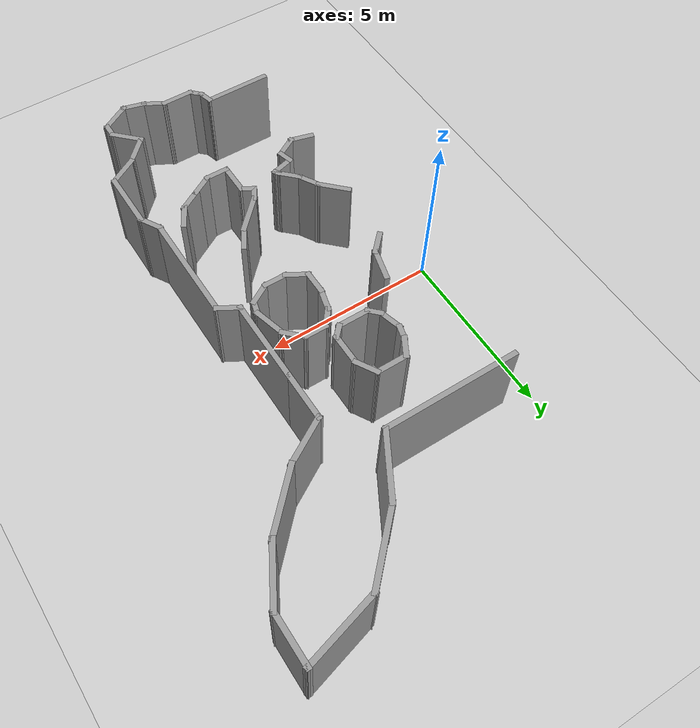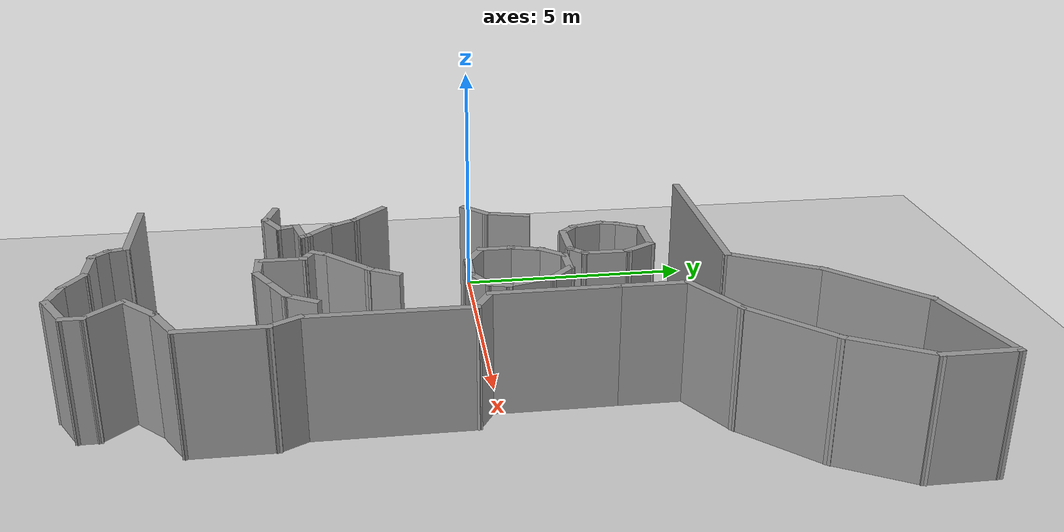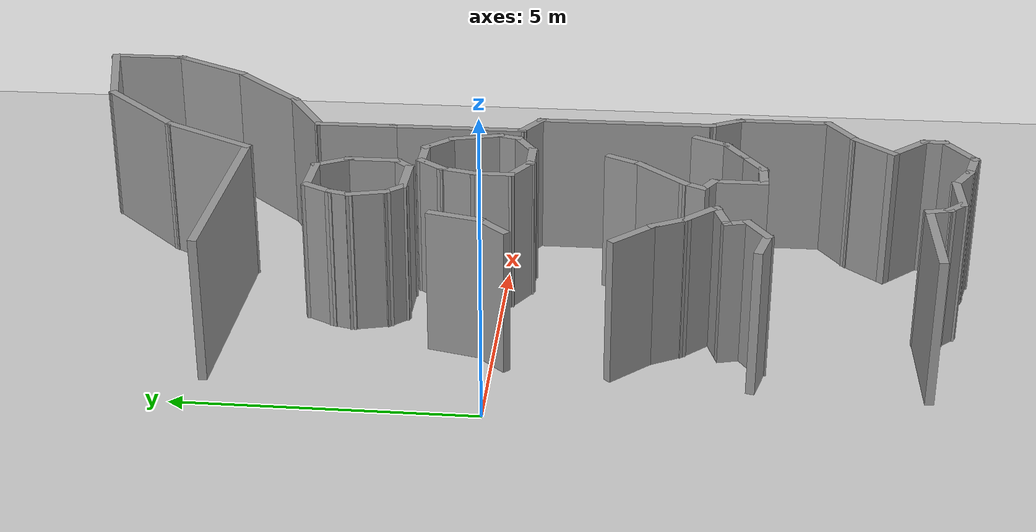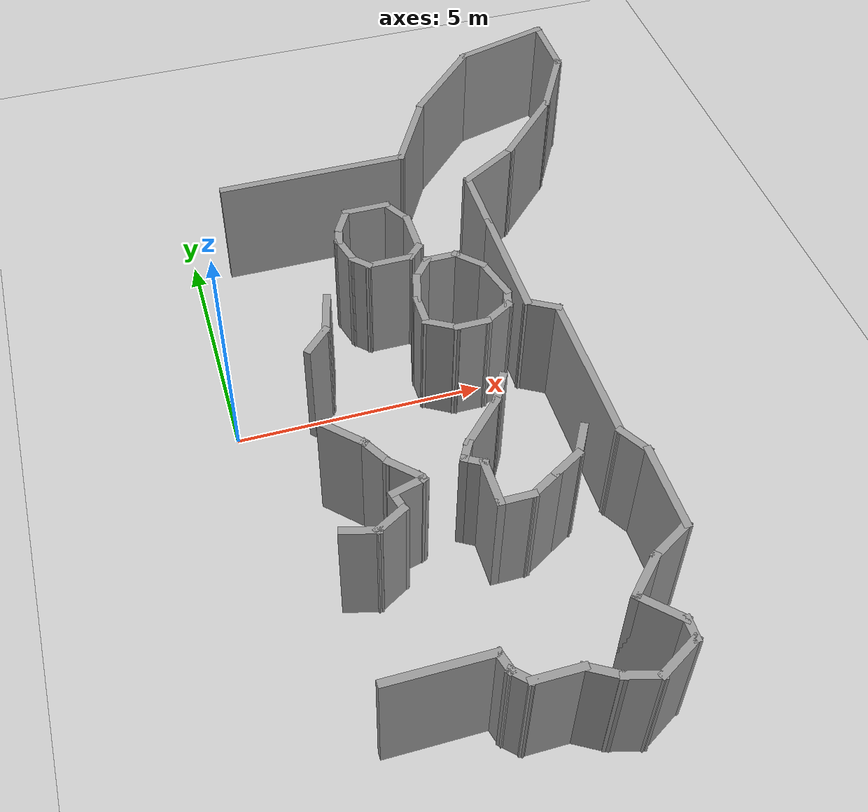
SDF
<sdf version="1.7">
 <world name="default">
  <model name="ground_plane">
   <static>1</static>
   <link name="link">
    <collision name="collision">
     <geometry><plane><normal>0 0 1</normal><size>100 100</size></plane></geometry>
     <surface>
      <contact><collide_bitmask>65535</collide_bitmask></contact>
      <friction><ode><mu>100</mu><mu2>50</mu2></ode></friction>
     </surface>
    </collision>
    <visual name="visual">
     <cast_shadows>0</cast_shadows>
     <geometry><plane><normal>0 0 1</normal><size>100 100</size></plane></geometry>
     <material>
      <script><uri>file://media/materials/scripts/gazebo.material</uri><name>Gazebo/Grey</name></script>
     </material>
    </visual>
   </link>
  </model>
  <model name="pikachu">
   <pose>-0.20309 0.029445 0 0 -0 0</pose>
   <link name="Wall_153">
    <collision name="Wall_153_Collision">
     <geometry><box><size>4 0.15 2.5</size></box></geometry>
     <pose>0 0 1.25 0 -0 0</pose>
    </collision>
    <visual name="Wall_153_Visual">
     <pose>0 0 1.25 0 -0 0</pose>
     <geometry><box><size>4 0.15 2.5</size></box></geometry>
     <material>
      <script><uri>file://media/materials/scripts/gazebo.material</uri><name>Gazebo/Grey</name></script>
      <ambient>1 1 1 1</ambient>
     </material>
     <meta><layer>0</layer></meta>
    </visual>
    <pose>2.94769 4.60083 0 0 -0 0</pose>
   </link>
   <link name="Wall_154">
    <collision name="Wall_154_Collision">
     <geometry><box><size>2 0.15 2.5</size></box></geometry>
     <pose>0 0 1.25 0 -0 0</pose>
    </collision>
    <visual name="Wall_154_Visual">
     <pose>0 0 1.25 0 -0 0</pose>
     <geometry><box><size>2 0.15 2.5</size></box></geometry>
     <material>
      <script><uri>file://media/materials/scripts/gazebo.material</uri><name>Gazebo/Grey</name></script>
      <ambient>1 1 1 1</ambient>
     </material>
     <meta><layer>0</layer></meta>
    </visual>
    <pose>5.33519 5.40191 0 0 -0 1.0472</pose>
   </link>
   <link name="Wall_155">
    <collision name="Wall_155_Collision">
     <geometry><box><size>2.25 0.15 2.5</size></box></geometry>
     <pose>0 0 1.25 0 -0 0</pose>
    </collision>
    <visual name="Wall_155_Visual">
     <pose>0 0 1.25 0 -0 0</pose>
     <geometry><box><size>2.25 0.15 2.5</size></box></geometry>
     <material>
      <script><uri>file://media/materials/scripts/gazebo.material</uri><name>Gazebo/Grey</name></script>
      <ambient>1 1 1 1</ambient>
     </material>
     <meta><layer>0</layer></meta>
    </visual>
    <pose>6.54016 6.94544 0 0 -0 0.785398</pose>
   </link>
   <link name="Wall_156">
    <collision name="Wall_156_Collision">
     <geometry><box><size>2.25 0.15 2.5</size></box></geometry>
     <pose>0 0 1.25 0 -0 0</pose>
    </collision>
    <visual name="Wall_156_Visual">
     <pose>0 0 1.25 0 -0 0</pose>
     <geometry><box><size>2.25 0.15 2.5</size></box></geometry>
     <material>
      <script><uri>file://media/materials/scripts/gazebo.material</uri><name>Gazebo/Grey</name></script>
      <ambient>1 1 1 1</ambient>
     </material>
     <meta><layer>0</layer></meta>
    </visual>
    <pose>8.29684 7.95966 0 0 -0 0.261799</pose>
   </link>
   <link name="Wall_157">
    <collision name="Wall_157_Collision">
     <geometry><box><size>1.5 0.15 2.5</size></box></geometry>
     <pose>0 0 1.25 0 -0 0</pose>
    </collision>
    <visual name="Wall_157_Visual">
     <pose>0 0 1.25 0 -0 0</pose>
     <geometry><box><size>1.5 0.15 2.5</size></box></geometry>
     <material>
      <script><uri>file://media/materials/scripts/gazebo.material</uri><name>Gazebo/Grey</name></script>
      <ambient>1 1 1 1</ambient>
     </material>
     <meta><layer>0</layer></meta>
    </visual>
    <pose>9.31106 7.55642 0 0 -0 -1.5708</pose>
   </link>
   <link name="Wall_158">
    <collision name="Wall_158_Collision">
     <geometry><box><size>1.75 0.15 2.5</size></box></geometry>
     <pose>0 0 1.25 0 -0 0</pose>
    </collision>
    <visual name="Wall_158_Visual">
     <pose>0 0 1.25 0 -0 0</pose>
     <geometry><box><size>1.75 0.15 2.5</size></box></geometry>
     <material>
      <script><uri>file://media/materials/scripts/gazebo.material</uri><name>Gazebo/Grey</name></script>
      <ambient>1 1 1 1</ambient>
     </material>
     <meta><layer>0</layer></meta>
    </visual>
    <pose>8.91106 6.1886 0 0 -0 -2.0944</pose>
   </link>
   <link name="Wall_159">
    <collision name="Wall_159_Collision">
     <geometry><box><size>2 0.15 2.5</size></box></geometry>
     <pose>0 0 1.25 0 -0 0</pose>
    </collision>
    <visual name="Wall_159_Visual">
     <pose>0 0 1.25 0 -0 0</pose>
     <geometry><box><size>2 0.15 2.5</size></box></geometry>
     <material>
      <script><uri>file://media/materials/scripts/gazebo.material</uri><name>Gazebo/Grey</name></script>
      <ambient>1 1 1 1</ambient>
     </material>
     <meta><layer>0</layer></meta>
    </visual>
    <pose>7.85699 4.84171 0 0 -0 -2.35619</pose>
   </link>
   <link name="Wall_160">
    <collision name="Wall_160_Collision">
     <geometry><box><size>1.5 0.15 2.5</size></box></geometry>
     <pose>0 0 1.25 0 -0 0</pose>
    </collision>
    <visual name="Wall_160_Visual">
     <pose>0 0 1.25 0 -0 0</pose>
     <geometry><box><size>1.5 0.15 2.5</size></box></geometry>
     <material>
      <script><uri>file://media/materials/scripts/gazebo.material</uri><name>Gazebo/Grey</name></script>
      <ambient>1 1 1 1</ambient>
     </material>
     <meta><layer>0</layer></meta>
    </visual>
    <pose>6.61835 3.85013 0 0 -0 -2.61799</pose>
   </link>
   <link name="Wall_161">
    <collision name="Wall_161_Collision">
     <geometry><box><size>1.5 0.15 2.5</size></box></geometry>
     <pose>0 0 1.25 0 -0 0</pose>
    </collision>
    <visual name="Wall_161_Visual">
     <pose>0 0 1.25 0 -0 0</pose>
     <geometry><box><size>1.5 0.15 2.5</size></box></geometry>
     <material>
      <script><uri>file://media/materials/scripts/gazebo.material</uri><name>Gazebo/Grey</name></script>
      <ambient>1 1 1 1</ambient>
     </material>
     <meta><layer>0</layer></meta>
    </visual>
    <pose>6.03378 2.83764 0 0 -0 -1.5708</pose>
   </link>
   <link name="Wall_162">
    <collision name="Wall_162_Collision">
     <geometry><box><size>2.5 0.15 2.5</size></box></geometry>
     <pose>0 0 1.25 0 -0 0</pose>
    </collision>
    <visual name="Wall_162_Visual">
     <pose>0 0 1.25 0 -0 0</pose>
     <geometry><box><size>2.5 0.15 2.5</size></box></geometry>
     <material>
      <script><uri>file://media/materials/scripts/gazebo.material</uri><name>Gazebo/Grey</name></script>
      <ambient>1 1 1 1</ambient>
     </material>
     <meta><layer>0</layer></meta>
    </visual>
    <pose>6.03378 0.987635 0 0 -0 -1.5708</pose>
   </link>
   <link name="Wall_163">
    <collision name="Wall_163_Collision">
     <geometry><box><size>0.75 0.15 2.5</size></box></geometry>
     <pose>0 0 1.25 0 -0 0</pose>
    </collision>
    <visual name="Wall_163_Visual">
     <pose>0 0 1.25 0 -0 0</pose>
     <geometry><box><size>0.75 0.15 2.5</size></box></geometry>
     <material>
      <script><uri>file://media/materials/scripts/gazebo.material</uri><name>Gazebo/Grey</name></script>
      <ambient>1 1 1 1</ambient>
     </material>
     <meta><layer>0</layer></meta>
    </visual>
    <pose>6.29359 -0.337365 0 0 -0 -0.523599</pose>
   </link>
   <link name="Wall_164">
    <collision name="Wall_164_Collision">
     <geometry><box><size>3.25 0.15 2.5</size></box></geometry>
     <pose>0 0 1.25 0 -0 0</pose>
    </collision>
    <visual name="Wall_164_Visual">
     <pose>0 0 1.25 0 -0 0</pose>
     <geometry><box><size>3.25 0.15 2.5</size></box></geometry>
     <material>
      <script><uri>file://media/materials/scripts/gazebo.material</uri><name>Gazebo/Grey</name></script>
      <ambient>1 1 1 1</ambient>
     </material>
     <meta><layer>0</layer></meta>
    </visual>
    <pose>6.5534 -2.03736 0 0 -0 -1.5708</pose>
   </link>
   <link name="Wall_165">
    <collision name="Wall_165_Collision">
     <geometry><box><size>0.75 0.15 2.5</size></box></geometry>
     <pose>0 0 1.25 0 -0 0</pose>
    </collision>
    <visual name="Wall_165_Visual">
     <pose>0 0 1.25 0 -0 0</pose>
     <geometry><box><size>0.75 0.15 2.5</size></box></geometry>
     <material>
      <script><uri>file://media/materials/scripts/gazebo.material</uri><name>Gazebo/Grey</name></script>
      <ambient>1 1 1 1</ambient>
     </material>
     <meta><layer>0</layer></meta>
    </visual>
    <pose>6.7034 -3.84717 0 0 -0 -1.0472</pose>
   </link>
   <link name="Wall_166">
    <collision name="Wall_166_Collision">
     <geometry><box><size>1.75 0.15 2.5</size></box></geometry>
     <pose>0 0 1.25 0 -0 0</pose>
    </collision>
    <visual name="Wall_166_Visual">
     <pose>0 0 1.25 0 -0 0</pose>
     <geometry><box><size>1.75 0.15 2.5</size></box></geometry>
     <material>
      <script><uri>file://media/materials/scripts/gazebo.material</uri><name>Gazebo/Grey</name></script>
      <ambient>1 1 1 1</ambient>
     </material>
     <meta><layer>0</layer></meta>
    </visual>
    <pose>6.8534 -4.90698 0 0 -0 -1.5708</pose>
   </link>
   <link name="Wall_167">
    <collision name="Wall_167_Collision">
     <geometry><box><size>1 0.15 2.5</size></box></geometry>
     <pose>0 0 1.25 0 -0 0</pose>
    </collision>
    <visual name="Wall_167_Visual">
     <pose>0 0 1.25 0 -0 0</pose>
     <geometry><box><size>1 0.15 2.5</size></box></geometry>
     <material>
      <script><uri>file://media/materials/scripts/gazebo.material</uri><name>Gazebo/Grey</name></script>
      <ambient>1 1 1 1</ambient>
     </material>
     <meta><layer>0</layer></meta>
    </visual>
    <pose>6.48534 -5.91948 0 0 -0 -2.61799</pose>
   </link>
   <link name="Wall_168">
    <collision name="Wall_168_Collision">
     <geometry><box><size>1 0.15 2.5</size></box></geometry>
     <pose>0 0 1.25 0 -0 0</pose>
    </collision>
    <visual name="Wall_168_Visual">
     <pose>0 0 1.25 0 -0 0</pose>
     <geometry><box><size>1 0.15 2.5</size></box></geometry>
     <material>
      <script><uri>file://media/materials/scripts/gazebo.material</uri><name>Gazebo/Grey</name></script>
      <ambient>1 1 1 1</ambient>
     </material>
     <meta><layer>0</layer></meta>
    </visual>
    <pose>5.81675 -6.4325 0 0 -0 -2.35619</pose>
   </link>
   <link name="Wall_169">
    <collision name="Wall_169_Collision">
     <geometry><box><size>1 0.15 2.5</size></box></geometry>
     <pose>0 0 1.25 0 -0 0</pose>
    </collision>
    <visual name="Wall_169_Visual">
     <pose>0 0 1.25 0 -0 0</pose>
     <geometry><box><size>1 0.15 2.5</size></box></geometry>
     <material>
      <script><uri>file://media/materials/scripts/gazebo.material</uri><name>Gazebo/Grey</name></script>
      <ambient>1 1 1 1</ambient>
     </material>
     <meta><layer>0</layer></meta>
    </visual>
    <pose>5.81675 -7.03354 0 0 -0 -0.785398</pose>
   </link>
   <link name="Wall_170">
    <collision name="Wall_170_Collision">
     <geometry><box><size>0.5 0.15 2.5</size></box></geometry>
     <pose>0 0 1.25 0 -0 0</pose>
    </collision>
    <visual name="Wall_170_Visual">
     <pose>0 0 1.25 0 -0 0</pose>
     <geometry><box><size>0.5 0.15 2.5</size></box></geometry>
     <material>
      <script><uri>file://media/materials/scripts/gazebo.material</uri><name>Gazebo/Grey</name></script>
      <ambient>1 1 1 1</ambient>
     </material>
     <meta><layer>0</layer></meta>
    </visual>
    <pose>6.11728 -7.50906 0 0 -0 -1.5708</pose>
   </link>
   <link name="Wall_171">
    <collision name="Wall_171_Collision">
     <geometry><box><size>1 0.15 2.5</size></box></geometry>
     <pose>0 0 1.25 0 -0 0</pose>
    </collision>
    <visual name="Wall_171_Visual">
     <pose>0 0 1.25 0 -0 0</pose>
     <geometry><box><size>1 0.15 2.5</size></box></geometry>
     <material>
      <script><uri>file://media/materials/scripts/gazebo.material</uri><name>Gazebo/Grey</name></script>
      <ambient>1 1 1 1</ambient>
     </material>
     <meta><layer>0</layer></meta>
    </visual>
    <pose>5.74921 -7.89656 0 0 -0 -2.61799</pose>
   </link>
   <link name="Wall_172">
    <collision name="Wall_172_Collision">
     <geometry><box><size>0.75 0.15 2.5</size></box></geometry>
     <pose>0 0 1.25 0 -0 0</pose>
    </collision>
    <visual name="Wall_172_Visual">
     <pose>0 0 1.25 0 -0 0</pose>
     <geometry><box><size>0.75 0.15 2.5</size></box></geometry>
     <material>
      <script><uri>file://media/materials/scripts/gazebo.material</uri><name>Gazebo/Grey</name></script>
      <ambient>1 1 1 1</ambient>
     </material>
     <meta><layer>0</layer></meta>
    </visual>
    <pose>5.09138 -8.03142 0 0 -0 2.87979</pose>
   </link>
   <link name="Wall_173">
    <collision name="Wall_173_Collision">
     <geometry><box><size>0.75 0.15 2.5</size></box></geometry>
     <pose>0 0 1.25 0 -0 0</pose>
    </collision>
    <visual name="Wall_173_Visual">
     <pose>0 0 1.25 0 -0 0</pose>
     <geometry><box><size>0.75 0.15 2.5</size></box></geometry>
     <material>
      <script><uri>file://media/materials/scripts/gazebo.material</uri><name>Gazebo/Grey</name></script>
      <ambient>1 1 1 1</ambient>
     </material>
     <meta><layer>0</layer></meta>
    </visual>
    <pose>4.54179 -7.80377 0 0 -0 2.61799</pose>
   </link>
   <link name="Wall_174">
    <collision name="Wall_174_Collision">
     <geometry><box><size>1 0.15 2.5</size></box></geometry>
     <pose>0 0 1.25 0 -0 0</pose>
    </collision>
    <visual name="Wall_174_Visual">
     <pose>0 0 1.25 0 -0 0</pose>
     <geometry><box><size>1 0.15 2.5</size></box></geometry>
     <material>
      <script><uri>file://media/materials/scripts/gazebo.material</uri><name>Gazebo/Grey</name></script>
      <ambient>1 1 1 1</ambient>
     </material>
     <meta><layer>0</layer></meta>
    </visual>
    <pose>3.85698 -7.65377 0 0 -0 3.14159</pose>
   </link>
   <link name="Wall_175">
    <collision name="Wall_175_Collision">
     <geometry><box><size>0.5 0.15 2.5</size></box></geometry>
     <pose>0 0 1.25 0 -0 0</pose>
    </collision>
    <visual name="Wall_175_Visual">
     <pose>0 0 1.25 0 -0 0</pose>
     <geometry><box><size>0.5 0.15 2.5</size></box></geometry>
     <material>
      <script><uri>file://media/materials/scripts/gazebo.material</uri><name>Gazebo/Grey</name></script>
      <ambient>1 1 1 1</ambient>
     </material>
     <meta><layer>0</layer></meta>
    </visual>
    <pose>3.30824 -7.53003 0 0 -0 2.35619</pose>
   </link>
   <link name="Wall_176">
    <collision name="Wall_176_Collision">
     <geometry><box><size>0.5 0.15 2.5</size></box></geometry>
     <pose>0 0 1.25 0 -0 0</pose>
    </collision>
    <visual name="Wall_176_Visual">
     <pose>0 0 1.25 0 -0 0</pose>
     <geometry><box><size>0.5 0.15 2.5</size></box></geometry>
     <material>
      <script><uri>file://media/materials/scripts/gazebo.material</uri><name>Gazebo/Grey</name></script>
      <ambient>1 1 1 1</ambient>
     </material>
     <meta><layer>0</layer></meta>
    </visual>
    <pose>3.1392 -7.23725 0 0 -0 1.8326</pose>
   </link>
   <link name="Wall_177">
    <collision name="Wall_177_Collision">
     <geometry><box><size>2 0.15 2.5</size></box></geometry>
     <pose>0 0 1.25 0 -0 0</pose>
    </collision>
    <visual name="Wall_177_Visual">
     <pose>0 0 1.25 0 -0 0</pose>
     <geometry><box><size>2 0.15 2.5</size></box></geometry>
     <material>
      <script><uri>file://media/materials/scripts/gazebo.material</uri><name>Gazebo/Grey</name></script>
      <ambient>1 1 1 1</ambient>
     </material>
     <meta><layer>0</layer></meta>
    </visual>
    <pose>2.16891 -7.06821 0 0 -0 3.14159</pose>
   </link>
   <link name="Wall_233">
    <collision name="Wall_233_Collision">
     <geometry><box><size>1 0.15 2.5</size></box></geometry>
     <pose>0 0 1.25 0 -0 0</pose>
    </collision>
    <visual name="Wall_233_Visual">
     <pose>0 0 1.25 0 -0 0</pose>
     <geometry><box><size>1 0.15 2.5</size></box></geometry>
     <material>
      <script><uri>file://media/materials/scripts/gazebo.material</uri><name>Gazebo/Grey</name></script>
      <ambient>1 1 1 1</ambient>
     </material>
     <meta><layer>0</layer></meta>
    </visual>
    <pose>1.84972 -2.29317 0 0 -0 -0.785398</pose>
   </link>
   <link name="Wall_234">
    <collision name="Wall_234_Collision">
     <geometry><box><size>0.75 0.15 2.5</size></box></geometry>
     <pose>0 0 1.25 0 -0 0</pose>
    </collision>
    <visual name="Wall_234_Visual">
     <pose>0 0 1.25 0 -0 0</pose>
     <geometry><box><size>0.75 0.15 2.5</size></box></geometry>
     <material>
      <script><uri>file://media/materials/scripts/gazebo.material</uri><name>Gazebo/Grey</name></script>
      <ambient>1 1 1 1</ambient>
     </material>
     <meta><layer>0</layer></meta>
    </visual>
    <pose>2.30024 -2.8535 0 0 -0 -1.0472</pose>
   </link>
   <link name="Wall_235">
    <collision name="Wall_235_Collision">
     <geometry><box><size>0.75 0.15 2.5</size></box></geometry>
     <pose>0 0 1.25 0 -0 0</pose>
    </collision>
    <visual name="Wall_235_Visual">
     <pose>0 0 1.25 0 -0 0</pose>
     <geometry><box><size>0.75 0.15 2.5</size></box></geometry>
     <material>
      <script><uri>file://media/materials/scripts/gazebo.material</uri><name>Gazebo/Grey</name></script>
      <ambient>1 1 1 1</ambient>
     </material>
     <meta><layer>0</layer></meta>
    </visual>
    <pose>2.66237 -3.32544 0 0 -0 -0.785398</pose>
   </link>
   <link name="Wall_236">
    <collision name="Wall_236_Collision">
     <geometry><box><size>0.25 0.15 2.5</size></box></geometry>
     <pose>0 0 1.25 0 -0 0</pose>
    </collision>
    <visual name="Wall_236_Visual">
     <pose>0 0 1.25 0 -0 0</pose>
     <geometry><box><size>0.25 0.15 2.5</size></box></geometry>
     <material>
      <script><uri>file://media/materials/scripts/gazebo.material</uri><name>Gazebo/Grey</name></script>
      <ambient>1 1 1 1</ambient>
     </material>
     <meta><layer>0</layer></meta>
    </visual>
    <pose>2.89951 -3.58087 0 0 -0 -1.0472</pose>
   </link>
   <link name="Wall_237">
    <collision name="Wall_237_Collision">
     <geometry><box><size>0.75 0.15 2.5</size></box></geometry>
     <pose>0 0 1.25 0 -0 0</pose>
    </collision>
    <visual name="Wall_237_Visual">
     <pose>0 0 1.25 0 -0 0</pose>
     <geometry><box><size>0.75 0.15 2.5</size></box></geometry>
     <material>
      <script><uri>file://media/materials/scripts/gazebo.material</uri><name>Gazebo/Grey</name></script>
      <ambient>1 1 1 1</ambient>
     </material>
     <meta><layer>0</layer></meta>
    </visual>
    <pose>2.63473 -3.70182 0 0 -0 -2.87979</pose>
   </link>
   <link name="Wall_238">
    <collision name="Wall_238_Collision">
     <geometry><box><size>0.5 0.15 2.5</size></box></geometry>
     <pose>0 0 1.25 0 -0 0</pose>
    </collision>
    <visual name="Wall_238_Visual">
     <pose>0 0 1.25 0 -0 0</pose>
     <geometry><box><size>0.5 0.15 2.5</size></box></geometry>
     <material>
      <script><uri>file://media/materials/scripts/gazebo.material</uri><name>Gazebo/Grey</name></script>
      <ambient>1 1 1 1</ambient>
     </material>
     <meta><layer>0</layer></meta>
    </visual>
    <pose>2.39024 -3.9485 0 0 -0 -1.309</pose>
   </link>
   <link name="Wall_239">
    <collision name="Wall_239_Collision">
     <geometry><box><size>0.75 0.15 2.5</size></box></geometry>
     <pose>0 0 1.25 0 -0 0</pose>
    </collision>
    <visual name="Wall_239_Visual">
     <pose>0 0 1.25 0 -0 0</pose>
     <geometry><box><size>0.75 0.15 2.5</size></box></geometry>
     <material>
      <script><uri>file://media/materials/scripts/gazebo.material</uri><name>Gazebo/Grey</name></script>
      <ambient>1 1 1 1</ambient>
     </material>
     <meta><layer>0</layer></meta>
    </visual>
    <pose>2.17573 -4.26754 0 0 -0 -2.61799</pose>
   </link>
   <link name="Wall_240">
    <collision name="Wall_240_Collision">
     <geometry><box><size>0.75 0.15 2.5</size></box></geometry>
     <pose>0 0 1.25 0 -0 0</pose>
    </collision>
    <visual name="Wall_240_Visual">
     <pose>0 0 1.25 0 -0 0</pose>
     <geometry><box><size>0.75 0.15 2.5</size></box></geometry>
     <material>
      <script><uri>file://media/materials/scripts/gazebo.material</uri><name>Gazebo/Grey</name></script>
      <ambient>1 1 1 1</ambient>
     </material>
     <meta><layer>0</layer></meta>
    </visual>
    <pose>1.62614 -4.33989 0 0 -0 2.87979</pose>
   </link>
   <link name="Wall_245">
    <collision name="Wall_245_Collision">
     <geometry><box><size>0.75 0.15 2.5</size></box></geometry>
     <pose>0 0 1.25 0 -0 0</pose>
    </collision>
    <visual name="Wall_245_Visual">
     <pose>0 0 1.25 0 -0 0</pose>
     <geometry><box><size>0.75 0.15 2.5</size></box></geometry>
     <material>
      <script><uri>file://media/materials/scripts/gazebo.material</uri><name>Gazebo/Grey</name></script>
      <ambient>1 1 1 1</ambient>
     </material>
     <meta><layer>0</layer></meta>
    </visual>
    <pose>4.82883 -2.07365 0 0 -0 -2.0944</pose>
   </link>
   <link name="Wall_246">
    <collision name="Wall_246_Collision">
     <geometry><box><size>1.25 0.15 2.5</size></box></geometry>
     <pose>0 0 1.25 0 -0 0</pose>
    </collision>
    <visual name="Wall_246_Visual">
     <pose>0 0 1.25 0 -0 0</pose>
     <geometry><box><size>1.25 0.15 2.5</size></box></geometry>
     <material>
      <script><uri>file://media/materials/scripts/gazebo.material</uri><name>Gazebo/Grey</name></script>
      <ambient>1 1 1 1</ambient>
     </material>
     <meta><layer>0</layer></meta>
    </visual>
    <pose>4.28992 -2.72237 0 0 -0 -2.35619</pose>
   </link>
   <link name="Wall_247">
    <collision name="Wall_247_Collision">
     <geometry><box><size>0.5 0.15 2.5</size></box></geometry>
     <pose>0 0 1.25 0 -0 0</pose>
    </collision>
    <visual name="Wall_247_Visual">
     <pose>0 0 1.25 0 -0 0</pose>
     <geometry><box><size>0.5 0.15 2.5</size></box></geometry>
     <material>
      <script><uri>file://media/materials/scripts/gazebo.material</uri><name>Gazebo/Grey</name></script>
      <ambient>1 1 1 1</ambient>
     </material>
     <meta><layer>0</layer></meta>
    </visual>
    <pose>3.81351 -3.26283 0 0 -0 -2.0944</pose>
   </link>
   <link name="Wall_248">
    <collision name="Wall_248_Collision">
     <geometry><box><size>0.5 0.15 2.5</size></box></geometry>
     <pose>0 0 1.25 0 -0 0</pose>
    </collision>
    <visual name="Wall_248_Visual">
     <pose>0 0 1.25 0 -0 0</pose>
     <geometry><box><size>0.5 0.15 2.5</size></box></geometry>
     <material>
      <script><uri>file://media/materials/scripts/gazebo.material</uri><name>Gazebo/Grey</name></script>
      <ambient>1 1 1 1</ambient>
     </material>
     <meta><layer>0</layer></meta>
    </visual>
    <pose>3.87757 -3.50188 0 0 -0 -0.523599</pose>
   </link>
   <link name="Wall_249">
    <collision name="Wall_249_Collision">
     <geometry><box><size>1 0.15 2.5</size></box></geometry>
     <pose>0 0 1.25 0 -0 0</pose>
    </collision>
    <visual name="Wall_249_Visual">
     <pose>0 0 1.25 0 -0 0</pose>
     <geometry><box><size>1 0.15 2.5</size></box></geometry>
     <material>
      <script><uri>file://media/materials/scripts/gazebo.material</uri><name>Gazebo/Grey</name></script>
      <ambient>1 1 1 1</ambient>
     </material>
     <meta><layer>0</layer></meta>
    </visual>
    <pose>4.02912 -4.01438 0 0 -0 -1.5708</pose>
   </link>
   <link name="Wall_250">
    <collision name="Wall_250_Collision">
     <geometry><box><size>0.75 0.15 2.5</size></box></geometry>
     <pose>0 0 1.25 0 -0 0</pose>
    </collision>
    <visual name="Wall_250_Visual">
     <pose>0 0 1.25 0 -0 0</pose>
     <geometry><box><size>0.75 0.15 2.5</size></box></geometry>
     <material>
      <script><uri>file://media/materials/scripts/gazebo.material</uri><name>Gazebo/Grey</name></script>
      <ambient>1 1 1 1</ambient>
     </material>
     <meta><layer>0</layer></meta>
    </visual>
    <pose>4.32912 -4.43938 0 0 -0 0</pose>
   </link>
   <link name="Wall_251">
    <collision name="Wall_251_Collision">
     <geometry><box><size>0.75 0.15 2.5</size></box></geometry>
     <pose>0 0 1.25 0 -0 0</pose>
    </collision>
    <visual name="Wall_251_Visual">
     <pose>0 0 1.25 0 -0 0</pose>
     <geometry><box><size>0.75 0.15 2.5</size></box></geometry>
     <material>
      <script><uri>file://media/materials/scripts/gazebo.material</uri><name>Gazebo/Grey</name></script>
      <ambient>1 1 1 1</ambient>
     </material>
     <meta><layer>0</layer></meta>
    </visual>
    <pose>4.88893 -4.28938 0 0 -0 0.523599</pose>
   </link>
   <link name="Wall_252">
    <collision name="Wall_252_Collision">
     <geometry><box><size>0.75 0.15 2.5</size></box></geometry>
     <pose>0 0 1.25 0 -0 0</pose>
    </collision>
    <visual name="Wall_252_Visual">
     <pose>0 0 1.25 0 -0 0</pose>
     <geometry><box><size>0.75 0.15 2.5</size></box></geometry>
     <material>
      <script><uri>file://media/materials/scripts/gazebo.material</uri><name>Gazebo/Grey</name></script>
      <ambient>1 1 1 1</ambient>
     </material>
     <meta><layer>0</layer></meta>
    </visual>
    <pose>5.40854 -3.98938 0 0 -0 0.523599</pose>
   </link>
   <link name="Wall_253">
    <collision name="Wall_253_Collision">
     <geometry><box><size>0.75 0.15 2.5</size></box></geometry>
     <pose>0 0 1.25 0 -0 0</pose>
    </collision>
    <visual name="Wall_253_Visual">
     <pose>0 0 1.25 0 -0 0</pose>
     <geometry><box><size>0.75 0.15 2.5</size></box></geometry>
     <material>
      <script><uri>file://media/materials/scripts/gazebo.material</uri><name>Gazebo/Grey</name></script>
      <ambient>1 1 1 1</ambient>
     </material>
     <meta><layer>0</layer></meta>
    </visual>
    <pose>5.81835 -3.57958 0 0 -0 1.0472</pose>
   </link>
   <link name="Wall_263">
    <collision name="Wall_263_Collision">
     <geometry><box><size>1 0.15 2.5</size></box></geometry>
     <pose>0 0 1.25 0 -0 0</pose>
    </collision>
    <visual name="Wall_263_Visual">
     <pose>0 0 1.25 0 -0 0</pose>
     <geometry><box><size>1 0.15 2.5</size></box></geometry>
     <material>
      <script><uri>file://media/materials/scripts/gazebo.material</uri><name>Gazebo/Grey</name></script>
      <ambient>1 1 1 1</ambient>
     </material>
     <meta><layer>0</layer></meta>
    </visual>
    <pose>3.73749 3.22951 0 0 -0 0</pose>
   </link>
   <link name="Wall_264">
    <collision name="Wall_264_Collision">
     <geometry><box><size>0.75 0.15 2.5</size></box></geometry>
     <pose>0 0 1.25 0 -0 0</pose>
    </collision>
    <visual name="Wall_264_Visual">
     <pose>0 0 1.25 0 -0 0</pose>
     <geometry><box><size>0.75 0.15 2.5</size></box></geometry>
     <material>
      <script><uri>file://media/materials/scripts/gazebo.material</uri><name>Gazebo/Grey</name></script>
      <ambient>1 1 1 1</ambient>
     </material>
     <meta><layer>0</layer></meta>
    </visual>
    <pose>4.31249 2.9697 0 0 -0 -1.0472</pose>
   </link>
   <link name="Wall_265">
    <collision name="Wall_265_Collision">
     <geometry><box><size>1 0.15 2.5</size></box></geometry>
     <pose>0 0 1.25 0 -0 0</pose>
    </collision>
    <visual name="Wall_265_Visual">
     <pose>0 0 1.25 0 -0 0</pose>
     <geometry><box><size>1 0.15 2.5</size></box></geometry>
     <material>
      <script><uri>file://media/materials/scripts/gazebo.material</uri><name>Gazebo/Grey</name></script>
      <ambient>1 1 1 1</ambient>
     </material>
     <meta><layer>0</layer></meta>
    </visual>
    <pose>4.46249 2.2849 0 0 -0 -1.5708</pose>
   </link>
   <link name="Wall_266">
    <collision name="Wall_266_Collision">
     <geometry><box><size>0.5 0.15 2.5</size></box></geometry>
     <pose>0 0 1.25 0 -0 0</pose>
    </collision>
    <visual name="Wall_266_Visual">
     <pose>0 0 1.25 0 -0 0</pose>
     <geometry><box><size>0.5 0.15 2.5</size></box></geometry>
     <material>
      <script><uri>file://media/materials/scripts/gazebo.material</uri><name>Gazebo/Grey</name></script>
      <ambient>1 1 1 1</ambient>
     </material>
     <meta><layer>0</layer></meta>
    </visual>
    <pose>4.33875 1.73615 0 0 -0 -2.35619</pose>
   </link>
   <link name="Wall_267">
    <collision name="Wall_267_Collision">
     <geometry><box><size>1 0.15 2.5</size></box></geometry>
     <pose>0 0 1.25 0 -0 0</pose>
    </collision>
    <visual name="Wall_267_Visual">
     <pose>0 0 1.25 0 -0 0</pose>
     <geometry><box><size>1 0.15 2.5</size></box></geometry>
     <material>
      <script><uri>file://media/materials/scripts/gazebo.material</uri><name>Gazebo/Grey</name></script>
      <ambient>1 1 1 1</ambient>
     </material>
     <meta><layer>0</layer></meta>
    </visual>
    <pose>3.79001 1.61241 0 0 -0 3.14159</pose>
   </link>
   <link name="Wall_268">
    <collision name="Wall_268_Collision">
     <geometry><box><size>0.5 0.15 2.5</size></box></geometry>
     <pose>0 0 1.25 0 -0 0</pose>
    </collision>
    <visual name="Wall_268_Visual">
     <pose>0 0 1.25 0 -0 0</pose>
     <geometry><box><size>0.5 0.15 2.5</size></box></geometry>
     <material>
      <script><uri>file://media/materials/scripts/gazebo.material</uri><name>Gazebo/Grey</name></script>
      <ambient>1 1 1 1</ambient>
     </material>
     <meta><layer>0</layer></meta>
    </visual>
    <pose>3.24126 1.73615 0 0 -0 2.35619</pose>
   </link>
   <link name="Wall_269">
    <collision name="Wall_269_Collision">
     <geometry><box><size>0.75 0.15 2.5</size></box></geometry>
     <pose>0 0 1.25 0 -0 0</pose>
    </collision>
    <visual name="Wall_269_Visual">
     <pose>0 0 1.25 0 -0 0</pose>
     <geometry><box><size>0.75 0.15 2.5</size></box></geometry>
     <material>
      <script><uri>file://media/materials/scripts/gazebo.material</uri><name>Gazebo/Grey</name></script>
      <ambient>1 1 1 1</ambient>
     </material>
     <meta><layer>0</layer></meta>
    </visual>
    <pose>3.03987 2.14967 0 0 -0 1.8326</pose>
   </link>
   <link name="Wall_270">
    <collision name="Wall_270_Collision">
     <geometry><box><size>0.5 0.15 2.5</size></box></geometry>
     <pose>0 0 1.25 0 -0 0</pose>
    </collision>
    <visual name="Wall_270_Visual">
     <pose>0 0 1.25 0 -0 0</pose>
     <geometry><box><size>0.5 0.15 2.5</size></box></geometry>
     <material>
      <script><uri>file://media/materials/scripts/gazebo.material</uri><name>Gazebo/Grey</name></script>
      <ambient>1 1 1 1</ambient>
     </material>
     <meta><layer>0</layer></meta>
    </visual>
    <pose>3.00752 2.60849 0 0 -0 1.309</pose>
   </link>
   <link name="Wall_271">
    <collision name="Wall_271_Collision">
     <geometry><box><size>0.671272 0.15 2.5</size></box></geometry>
     <pose>0 0 1.25 0 -0 0</pose>
    </collision>
    <visual name="Wall_271_Visual">
     <pose>0 0 1.25 0 -0 0</pose>
     <geometry><box><size>0.671272 0.15 2.5</size></box></geometry>
     <material>
      <script><uri>file://media/materials/scripts/gazebo.material</uri><name>Gazebo/Grey</name></script>
      <ambient>1 1 1 1</ambient>
     </material>
     <meta><layer>0</layer></meta>
    </visual>
    <pose>3.18265 3.00352 0 0 -0 1.04931</pose>
   </link>
   <link name="Wall_279">
    <collision name="Wall_279_Collision">
     <geometry><box><size>0.75 0.15 2.5</size></box></geometry>
     <pose>0 0 1.25 0 -0 0</pose>
    </collision>
    <visual name="Wall_279_Visual">
     <pose>0 0 1.25 0 -0 0</pose>
     <geometry><box><size>0.75 0.15 2.5</size></box></geometry>
     <material>
      <script><uri>file://media/materials/scripts/gazebo.material</uri><name>Gazebo/Grey</name></script>
      <ambient>1 1 1 1</ambient>
     </material>
     <meta><layer>0</layer></meta>
    </visual>
    <pose>4.80623 1.43891 0 0 -0 0</pose>
   </link>
   <link name="Wall_280">
    <collision name="Wall_280_Collision">
     <geometry><box><size>0.75 0.15 2.5</size></box></geometry>
     <pose>0 0 1.25 0 -0 0</pose>
    </collision>
    <visual name="Wall_280_Visual">
     <pose>0 0 1.25 0 -0 0</pose>
     <geometry><box><size>0.75 0.15 2.5</size></box></geometry>
     <material>
      <script><uri>file://media/materials/scripts/gazebo.material</uri><name>Gazebo/Grey</name></script>
      <ambient>1 1 1 1</ambient>
     </material>
     <meta><layer>0</layer></meta>
    </visual>
    <pose>5.31836 1.22678 0 0 -0 -0.785398</pose>
   </link>
   <link name="Wall_281">
    <collision name="Wall_281_Collision">
     <geometry><box><size>1 0.15 2.5</size></box></geometry>
     <pose>0 0 1.25 0 -0 0</pose>
    </collision>
    <visual name="Wall_281_Visual">
     <pose>0 0 1.25 0 -0 0</pose>
     <geometry><box><size>1 0.15 2.5</size></box></geometry>
     <material>
      <script><uri>file://media/materials/scripts/gazebo.material</uri><name>Gazebo/Grey</name></script>
      <ambient>1 1 1 1</ambient>
     </material>
     <meta><layer>0</layer></meta>
    </visual>
    <pose>5.64049 0.60413 0 0 -0 -1.309</pose>
   </link>
   <link name="Wall_282">
    <collision name="Wall_282_Collision">
     <geometry><box><size>0.5 0.15 2.5</size></box></geometry>
     <pose>0 0 1.25 0 -0 0</pose>
    </collision>
    <visual name="Wall_282_Visual">
     <pose>0 0 1.25 0 -0 0</pose>
     <geometry><box><size>0.5 0.15 2.5</size></box></geometry>
     <material>
      <script><uri>file://media/materials/scripts/gazebo.material</uri><name>Gazebo/Grey</name></script>
      <ambient>1 1 1 1</ambient>
     </material>
     <meta><layer>0</layer></meta>
    </visual>
    <pose>5.70519 0.024575 0 0 -0 -1.8326</pose>
   </link>
   <link name="Wall_283">
    <collision name="Wall_283_Collision">
     <geometry><box><size>0.75 0.15 2.5</size></box></geometry>
     <pose>0 0 1.25 0 -0 0</pose>
    </collision>
    <visual name="Wall_283_Visual">
     <pose>0 0 1.25 0 -0 0</pose>
     <geometry><box><size>0.75 0.15 2.5</size></box></geometry>
     <material>
      <script><uri>file://media/materials/scripts/gazebo.material</uri><name>Gazebo/Grey</name></script>
      <ambient>1 1 1 1</ambient>
     </material>
     <meta><layer>0</layer></meta>
    </visual>
    <pose>5.40009 -0.294462 0 0 -0 -2.61799</pose>
   </link>
   <link name="Wall_284">
    <collision name="Wall_284_Collision">
     <geometry><box><size>0.75 0.15 2.5</size></box></geometry>
     <pose>0 0 1.25 0 -0 0</pose>
    </collision>
    <visual name="Wall_284_Visual">
     <pose>0 0 1.25 0 -0 0</pose>
     <geometry><box><size>0.75 0.15 2.5</size></box></geometry>
     <material>
      <script><uri>file://media/materials/scripts/gazebo.material</uri><name>Gazebo/Grey</name></script>
      <ambient>1 1 1 1</ambient>
     </material>
     <meta><layer>0</layer></meta>
    </visual>
    <pose>4.84028 -0.444462 0 0 -0 3.14159</pose>
   </link>
   <link name="Wall_285">
    <collision name="Wall_285_Collision">
     <geometry><box><size>0.75 0.15 2.5</size></box></geometry>
     <pose>0 0 1.25 0 -0 0</pose>
    </collision>
    <visual name="Wall_285_Visual">
     <pose>0 0 1.25 0 -0 0</pose>
     <geometry><box><size>0.75 0.15 2.5</size></box></geometry>
     <material>
      <script><uri>file://media/materials/scripts/gazebo.material</uri><name>Gazebo/Grey</name></script>
      <ambient>1 1 1 1</ambient>
     </material>
     <meta><layer>0</layer></meta>
    </visual>
    <pose>4.28048 -0.294462 0 0 -0 2.61799</pose>
   </link>
   <link name="Wall_286">
    <collision name="Wall_286_Collision">
     <geometry><box><size>0.75 0.15 2.5</size></box></geometry>
     <pose>0 0 1.25 0 -0 0</pose>
    </collision>
    <visual name="Wall_286_Visual">
     <pose>0 0 1.25 0 -0 0</pose>
     <geometry><box><size>0.75 0.15 2.5</size></box></geometry>
     <material>
      <script><uri>file://media/materials/scripts/gazebo.material</uri><name>Gazebo/Grey</name></script>
      <ambient>1 1 1 1</ambient>
     </material>
     <meta><layer>0</layer></meta>
    </visual>
    <pose>4.02067 0.155538 0 0 -0 1.5708</pose>
   </link>
   <link name="Wall_287">
    <collision name="Wall_287_Collision">
     <geometry><box><size>0.75 0.15 2.5</size></box></geometry>
     <pose>0 0 1.25 0 -0 0</pose>
    </collision>
    <visual name="Wall_287_Visual">
     <pose>0 0 1.25 0 -0 0</pose>
     <geometry><box><size>0.75 0.15 2.5</size></box></geometry>
     <material>
      <script><uri>file://media/materials/scripts/gazebo.material</uri><name>Gazebo/Grey</name></script>
      <ambient>1 1 1 1</ambient>
     </material>
     <meta><layer>0</layer></meta>
    </visual>
    <pose>4.09832 0.745316 0 0 -0 1.309</pose>
   </link>
   <link name="Wall_288">
    <collision name="Wall_288_Collision">
     <geometry><box><size>0.671676 0.15 2.5</size></box></geometry>
     <pose>0 0 1.25 0 -0 0</pose>
    </collision>
    <visual name="Wall_288_Visual">
     <pose>0 0 1.25 0 -0 0</pose>
     <geometry><box><size>0.671676 0.15 2.5</size></box></geometry>
     <material>
      <script><uri>file://media/materials/scripts/gazebo.material</uri><name>Gazebo/Grey</name></script>
      <ambient>1 1 1 1</ambient>
     </material>
     <meta><layer>0</layer></meta>
    </visual>
    <pose>4.34109 1.237 0 0 -0 0.885263</pose>
   </link>
   <link name="Wall_291">
    <collision name="Wall_291_Collision">
     <geometry><box><size>1 0.15 2.5</size></box></geometry>
     <pose>0 0 1.25 0 -0 0</pose>
    </collision>
    <visual name="Wall_291_Visual">
     <pose>0 0 1.25 0 -0 0</pose>
     <geometry><box><size>1 0.15 2.5</size></box></geometry>
     <material>
      <script><uri>file://media/materials/scripts/gazebo.material</uri><name>Gazebo/Grey</name></script>
      <ambient>1 1 1 1</ambient>
     </material>
     <meta><layer>0</layer></meta>
    </visual>
    <pose>2.25184 0.586271 0 0 -0 -1.8326</pose>
   </link>
   <link name="Wall_292">
    <collision name="Wall_292_Collision">
     <geometry><box><size>0.75 0.15 2.5</size></box></geometry>
     <pose>0 0 1.25 0 -0 0</pose>
    </collision>
    <visual name="Wall_292_Visual">
     <pose>0 0 1.25 0 -0 0</pose>
     <geometry><box><size>0.75 0.15 2.5</size></box></geometry>
     <material>
      <script><uri>file://media/materials/scripts/gazebo.material</uri><name>Gazebo/Grey</name></script>
      <ambient>1 1 1 1</ambient>
     </material>
     <meta><layer>0</layer></meta>
    </visual>
    <pose>1.92971 -0.036379 0 0 -0 -2.35619</pose>
   </link>
   <static>1</static>
  </model>
 </world>
</sdf>
